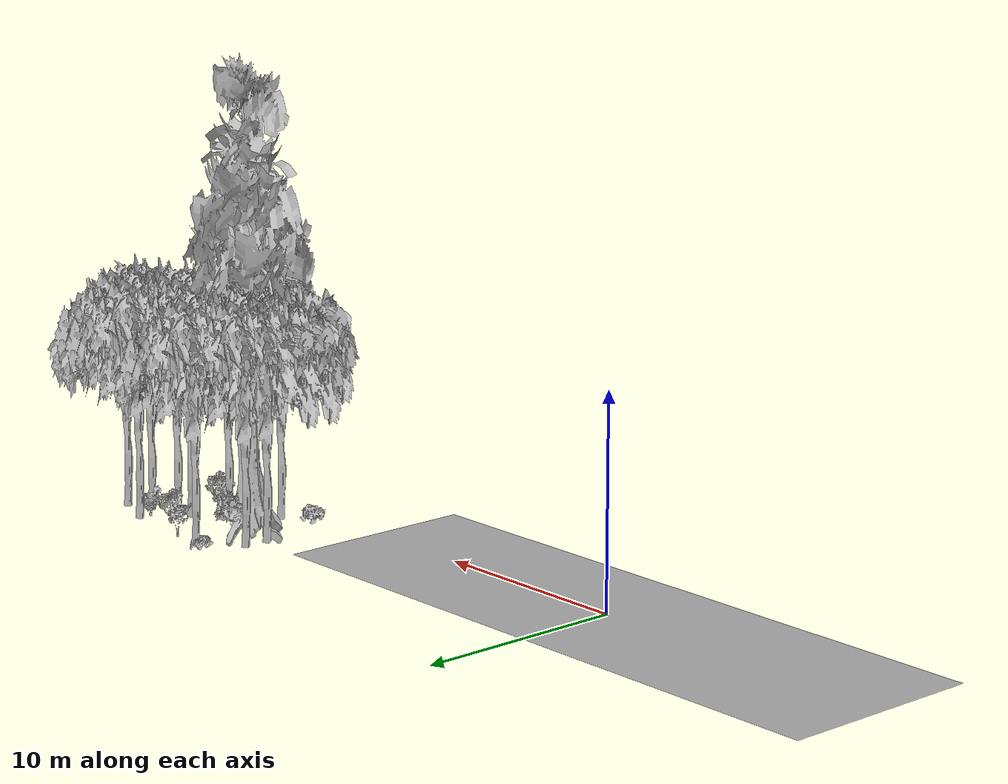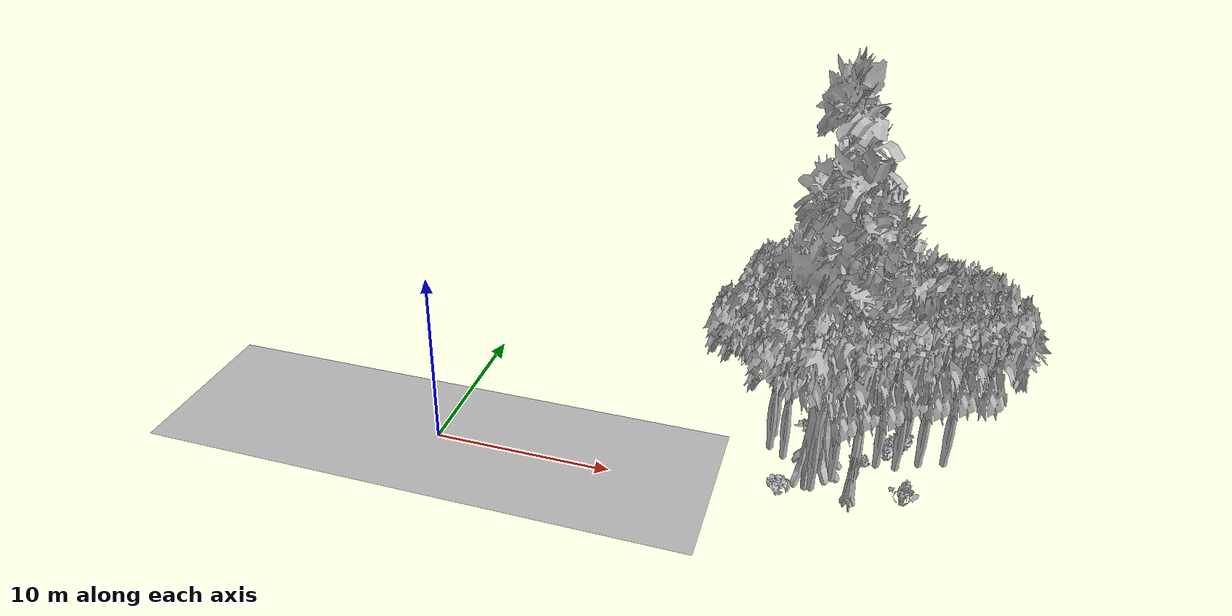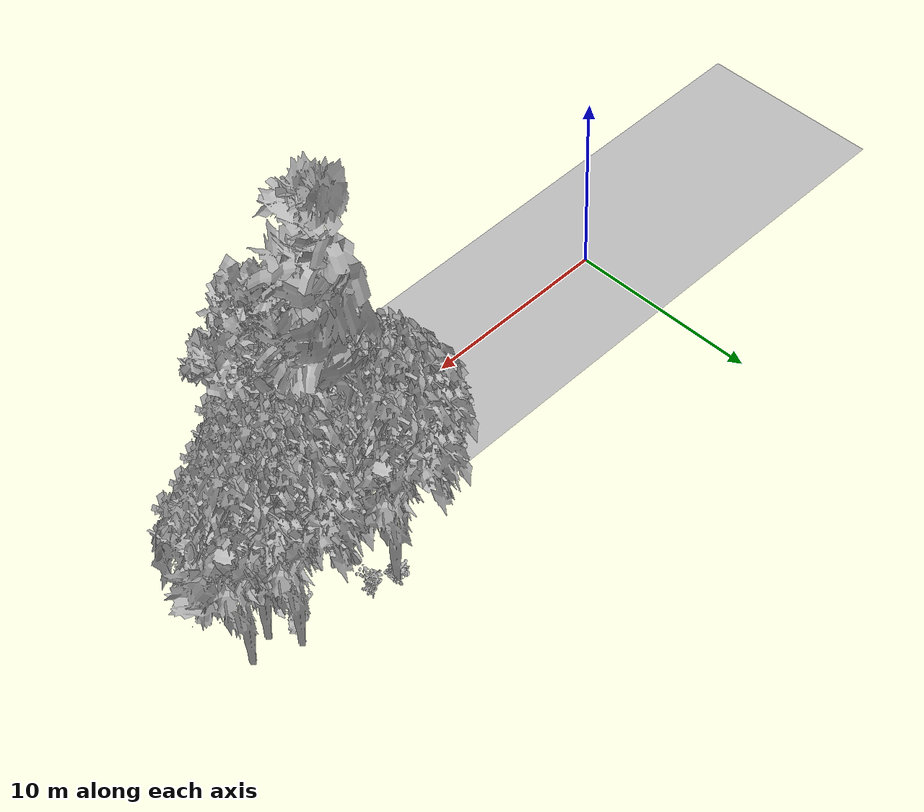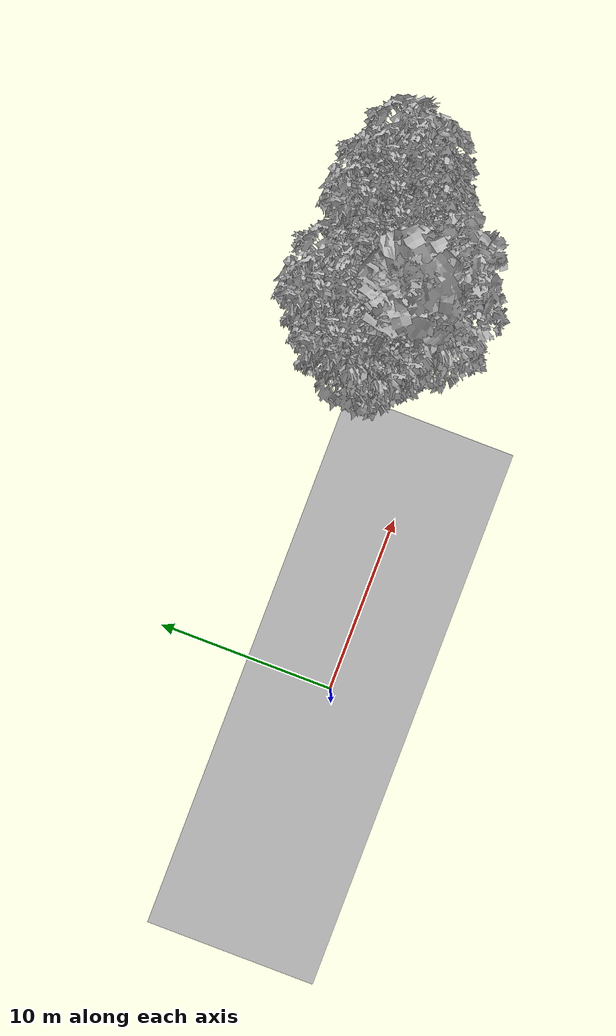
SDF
<sdf version="1.7">
 <world name="default">
  <model name="ground_plane">
   <static>1</static>
   <link name="link">
    <collision name="collision">
     <geometry><plane><normal>0 0 1</normal><size>100 100</size></plane></geometry>
     <surface><contact><ode><min_depth>0.01</min_depth><max_vel>0</max_vel></ode></contact></surface>
    </collision>
    <visual name="grass">
     <cast_shadows>0</cast_shadows>
     <geometry>
      <mesh>
       <scale>0.5814285714285714 0.18142857142857144 0.1</scale>
       <uri>file://grass_plane/meshes/grass_plane.dae</uri>
      </mesh>
     </geometry>
    </visual>
   </link>
  </model>
  <model name="Tree 81">
   <static>1</static>
   <pose>22.537473914864336 1.895866172801771 0 1.57079 -0 0</pose>
   <link name="link">
    <collision name="collision">
     <geometry><mesh><scale>3.5 5 3.5</scale><uri>model://tree_9/meshes/tree_9.obj</uri></mesh></geometry>
    </collision>
    <visual name="visual">
     <geometry><mesh><scale>3.5 5 3.5</scale><uri>model://tree_9/meshes/tree_9.obj</uri></mesh></geometry>
    </visual>
   </link>
  </model>
  <model name="Tree 83">
   <static>1</static>
   <pose>27.12649797620594 6.000795487902916 0 1.57079 -0 0</pose>
   <link name="link">
    <collision name="collision">
     <geometry><mesh><scale>3.5 5 3.5</scale><uri>model://tree_2/meshes/tree_2.obj</uri></mesh></geometry>
    </collision>
    <visual name="visual">
     <geometry><mesh><scale>3.5 5 3.5</scale><uri>model://tree_2/meshes/tree_2.obj</uri></mesh></geometry>
    </visual>
   </link>
  </model>
  <model name="Tree 109">
   <static>1</static>
   <pose>19.86935401064339 7.25377343078711 0 1.57079 -0 0</pose>
   <link name="link">
    <collision name="collision">
     <geometry><mesh><scale>3.5 5 3.5</scale><uri>model://tree_2/meshes/tree_2.obj</uri></mesh></geometry>
    </collision>
    <visual name="visual">
     <geometry><mesh><scale>3.5 5 3.5</scale><uri>model://tree_2/meshes/tree_2.obj</uri></mesh></geometry>
    </visual>
   </link>
  </model>
  <model name="Tree 130">
   <static>1</static>
   <pose>25.033602312988748 6.78810463887994 0 1.57079 -0 0</pose>
   <link name="link">
    <collision name="collision">
     <geometry><mesh><scale>3.5 5 3.5</scale><uri>model://tree_2/meshes/tree_2.obj</uri></mesh></geometry>
    </collision>
    <visual name="visual">
     <geometry><mesh><scale>3.5 5 3.5</scale><uri>model://tree_2/meshes/tree_2.obj</uri></mesh></geometry>
    </visual>
   </link>
  </model>
  <model name="Tree 149">
   <static>1</static>
   <pose>20.485277262154824 3.6603348632699415 0 1.57079 -0 0</pose>
   <link name="link">
    <collision name="collision">
     <geometry><mesh><scale>3.5 5 3.5</scale><uri>model://tree_4/meshes/tree_4.obj</uri></mesh></geometry>
    </collision>
    <visual name="visual">
     <geometry><mesh><scale>3.5 5 3.5</scale><uri>model://tree_4/meshes/tree_4.obj</uri></mesh></geometry>
    </visual>
   </link>
  </model>
  <model name="Tree 153">
   <static>1</static>
   <pose>20.473640522505377 1.7818829611966756 0 1.57079 -0 0</pose>
   <link name="link">
    <collision name="collision">
     <geometry><mesh><scale>3.5 5 3.5</scale><uri>model://tree_2/meshes/tree_2.obj</uri></mesh></geometry>
    </collision>
    <visual name="visual">
     <geometry><mesh><scale>3.5 5 3.5</scale><uri>model://tree_2/meshes/tree_2.obj</uri></mesh></geometry>
    </visual>
   </link>
  </model>
  <model name="Tree 156">
   <static>1</static>
   <pose>17.98838013507452 5.776265757509439 0 1.57079 -0 0</pose>
   <link name="link">
    <collision name="collision">
     <geometry><mesh><scale>3.5 5 3.5</scale><uri>model://tree_2/meshes/tree_2.obj</uri></mesh></geometry>
    </collision>
    <visual name="visual">
     <geometry><mesh><scale>3.5 5 3.5</scale><uri>model://tree_2/meshes/tree_2.obj</uri></mesh></geometry>
    </visual>
   </link>
  </model>
  <model name="Tree 252">
   <static>1</static>
   <pose>18.726730087102425 3.9905272458589103 0 1.57079 -0 0</pose>
   <link name="link">
    <collision name="collision">
     <geometry><mesh><scale>3.5 5 3.5</scale><uri>model://tree_2/meshes/tree_2.obj</uri></mesh></geometry>
    </collision>
    <visual name="visual">
     <geometry><mesh><scale>3.5 5 3.5</scale><uri>model://tree_2/meshes/tree_2.obj</uri></mesh></geometry>
    </visual>
   </link>
  </model>
  <model name="Tree 280">
   <static>1</static>
   <pose>22.56330411720201 3.3344534237254884 0 1.57079 -0 0</pose>
   <link name="link">
    <collision name="collision">
     <geometry><mesh><scale>3.5 5 3.5</scale><uri>model://tree_2/meshes/tree_2.obj</uri></mesh></geometry>
    </collision>
    <visual name="visual">
     <geometry><mesh><scale>3.5 5 3.5</scale><uri>model://tree_2/meshes/tree_2.obj</uri></mesh></geometry>
    </visual>
   </link>
  </model>
  <model name="Tree 341">
   <static>1</static>
   <pose>25.820794191080694 5.523986669109899 0 1.57079 -0 0</pose>
   <link name="link">
    <collision name="collision">
     <geometry><mesh><scale>3.5 5 3.5</scale><uri>model://tree_2/meshes/tree_2.obj</uri></mesh></geometry>
    </collision>
    <visual name="visual">
     <geometry><mesh><scale>3.5 5 3.5</scale><uri>model://tree_2/meshes/tree_2.obj</uri></mesh></geometry>
    </visual>
   </link>
  </model>
  <model name="Tree 371">
   <static>1</static>
   <pose>24.644805273480202 4.828877778966557 0 1.57079 -0 0</pose>
   <link name="link">
    <collision name="collision">
     <geometry><mesh><scale>3.5 5 3.5</scale><uri>model://tree_2/meshes/tree_2.obj</uri></mesh></geometry>
    </collision>
    <visual name="visual">
     <geometry><mesh><scale>3.5 5 3.5</scale><uri>model://tree_2/meshes/tree_2.obj</uri></mesh></geometry>
    </visual>
   </link>
  </model>
  <model name="Tree 379">
   <static>1</static>
   <pose>23.635403174701224 4.772918416149061 0 1.57079 -0 0</pose>
   <link name="link">
    <collision name="collision">
     <geometry><mesh><scale>3.5 5 3.5</scale><uri>model://tree_2/meshes/tree_2.obj</uri></mesh></geometry>
    </collision>
    <visual name="visual">
     <geometry><mesh><scale>3.5 5 3.5</scale><uri>model://tree_2/meshes/tree_2.obj</uri></mesh></geometry>
    </visual>
   </link>
  </model>
  <model name="Tree 426">
   <static>1</static>
   <pose>21.44066539528727 2.8993997643913474 0 1.57079 -0 0</pose>
   <link name="link">
    <collision name="collision">
     <geometry><mesh><scale>3.5 5 3.5</scale><uri>model://tree_2/meshes/tree_2.obj</uri></mesh></geometry>
    </collision>
    <visual name="visual">
     <geometry><mesh><scale>3.5 5 3.5</scale><uri>model://tree_2/meshes/tree_2.obj</uri></mesh></geometry>
    </visual>
   </link>
  </model>
  <model name="Tree 430">
   <static>1</static>
   <pose>17.920874600987403 4.585469670269461 0 1.57079 -0 0</pose>
   <link name="link">
    <collision name="collision">
     <geometry><mesh><scale>3.5 5 3.5</scale><uri>model://tree_2/meshes/tree_2.obj</uri></mesh></geometry>
    </collision>
    <visual name="visual">
     <geometry><mesh><scale>3.5 5 3.5</scale><uri>model://tree_2/meshes/tree_2.obj</uri></mesh></geometry>
    </visual>
   </link>
  </model>
  <model name="Bush 47">
   <static>1</static>
   <pose>21.411202876936002 7.301954226214342 0 1.57079 -0 0</pose>
   <link name="link">
    <collision name="collision">
     <geometry><mesh><scale>2 2 2</scale><uri>model://bush_5/meshes/bush_5.obj</uri></mesh></geometry>
     <surface><contact><collide_without_contact>false</collide_without_contact></contact></surface>
    </collision>
    <visual name="visual">
     <geometry><mesh><scale>2 2 2</scale><uri>model://bush_5/meshes/bush_5.obj</uri></mesh></geometry>
    </visual>
   </link>
  </model>
  <model name="Bush 94">
   <static>1</static>
   <pose>25.023516191629284 6.267320447413539 0 1.57079 -0 0</pose>
   <link name="link">
    <collision name="collision">
     <geometry><mesh><scale>2 2 2</scale><uri>model://bush_0/meshes/bush_0.obj</uri></mesh></geometry>
     <surface><contact><collide_without_contact>false</collide_without_contact></contact></surface>
    </collision>
    <visual name="visual">
     <geometry><mesh><scale>2 2 2</scale><uri>model://bush_0/meshes/bush_0.obj</uri></mesh></geometry>
    </visual>
   </link>
  </model>
  <model name="Bush 119">
   <static>1</static>
   <pose>20.730714422150754 4.402913439049488 0 1.57079 -0 0</pose>
   <link name="link">
    <collision name="collision">
     <geometry><mesh><scale>2 2 2</scale><uri>model://bush_1/meshes/bush_1.obj</uri></mesh></geometry>
     <surface><contact><collide_without_contact>false</collide_without_contact></contact></surface>
    </collision>
    <visual name="visual">
     <geometry><mesh><scale>2 2 2</scale><uri>model://bush_1/meshes/bush_1.obj</uri></mesh></geometry>
    </visual>
   </link>
  </model>
  <model name="Bush 149">
   <static>1</static>
   <pose>24.202510220149122 5.504540891801561 0 1.57079 -0 0</pose>
   <link name="link">
    <collision name="collision">
     <geometry><mesh><scale>2 2 2</scale><uri>model://bush_4/meshes/bush_4.obj</uri></mesh></geometry>
     <surface><contact><collide_without_contact>false</collide_without_contact></contact></surface>
    </collision>
    <visual name="visual">
     <geometry><mesh><scale>2 2 2</scale><uri>model://bush_4/meshes/bush_4.obj</uri></mesh></geometry>
    </visual>
   </link>
  </model>
  <model name="Bush 179">
   <static>1</static>
   <pose>25.195218994793095 1.972323302150194 0 1.57079 -0 0</pose>
   <link name="link">
    <collision name="collision">
     <geometry><mesh><scale>2 2 2</scale><uri>model://bush_4/meshes/bush_4.obj</uri></mesh></geometry>
     <surface><contact><collide_without_contact>false</collide_without_contact></contact></surface>
    </collision>
    <visual name="visual">
     <geometry><mesh><scale>2 2 2</scale><uri>model://bush_4/meshes/bush_4.obj</uri></mesh></geometry>
    </visual>
   </link>
  </model>
  <model name="Bush 219">
   <static>1</static>
   <pose>19.72257521964677 7.082954121524811 0 1.57079 -0 0</pose>
   <link name="link">
    <collision name="collision">
     <geometry><mesh><scale>2 2 2</scale><uri>model://bush_2/meshes/bush_2.obj</uri></mesh></geometry>
     <surface><contact><collide_without_contact>false</collide_without_contact></contact></surface>
    </collision>
    <visual name="visual">
     <geometry><mesh><scale>2 2 2</scale><uri>model://bush_2/meshes/bush_2.obj</uri></mesh></geometry>
    </visual>
   </link>
  </model>
  <model name="Bush 241">
   <static>1</static>
   <pose>18.99042184668157 1.2002193211983254 0 1.57079 -0 0</pose>
   <link name="link">
    <collision name="collision">
     <geometry><mesh><scale>2 2 2</scale><uri>model://bush_3/meshes/bush_3.obj</uri></mesh></geometry>
     <surface><contact><collide_without_contact>false</collide_without_contact></contact></surface>
    </collision>
    <visual name="visual">
     <geometry><mesh><scale>2 2 2</scale><uri>model://bush_3/meshes/bush_3.obj</uri></mesh></geometry>
    </visual>
   </link>
  </model>
  <model name="Bush 298">
   <static>1</static>
   <pose>22.870171325753248 3.657956584390906 0 1.57079 -0 0</pose>
   <link name="link">
    <collision name="collision">
     <geometry><mesh><scale>2 2 2</scale><uri>model://bush_5/meshes/bush_5.obj</uri></mesh></geometry>
     <surface><contact><collide_without_contact>false</collide_without_contact></contact></surface>
    </collision>
    <visual name="visual">
     <geometry><mesh><scale>2 2 2</scale><uri>model://bush_5/meshes/bush_5.obj</uri></mesh></geometry>
    </visual>
   </link>
  </model>
 </world>
</sdf>
